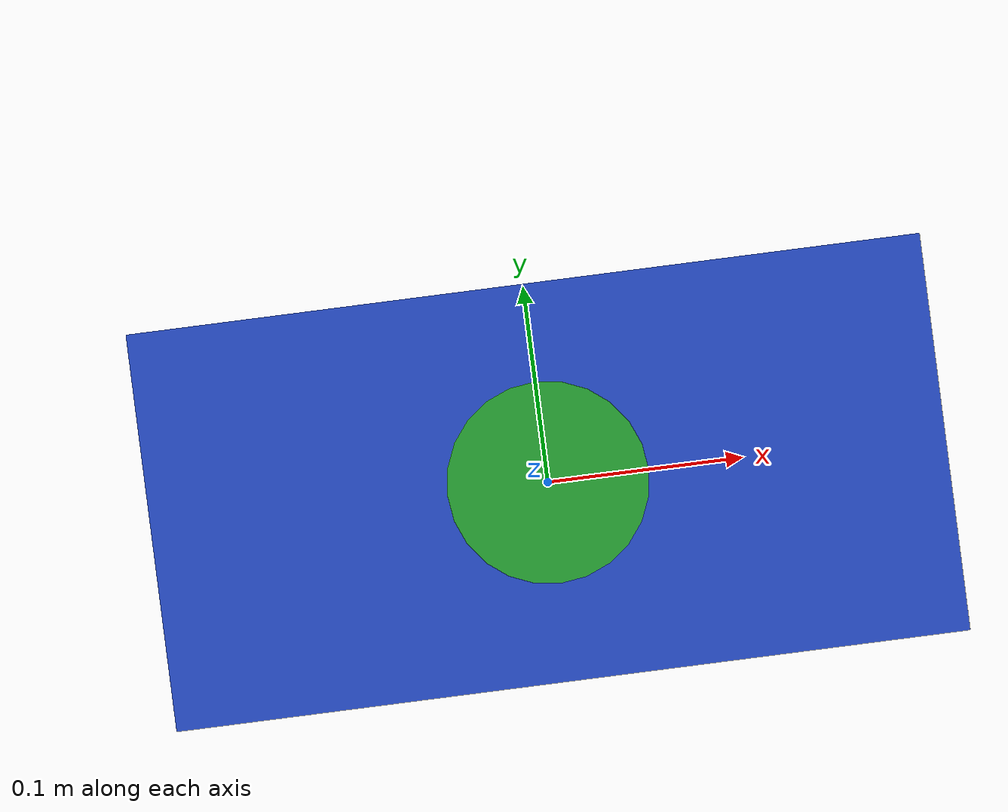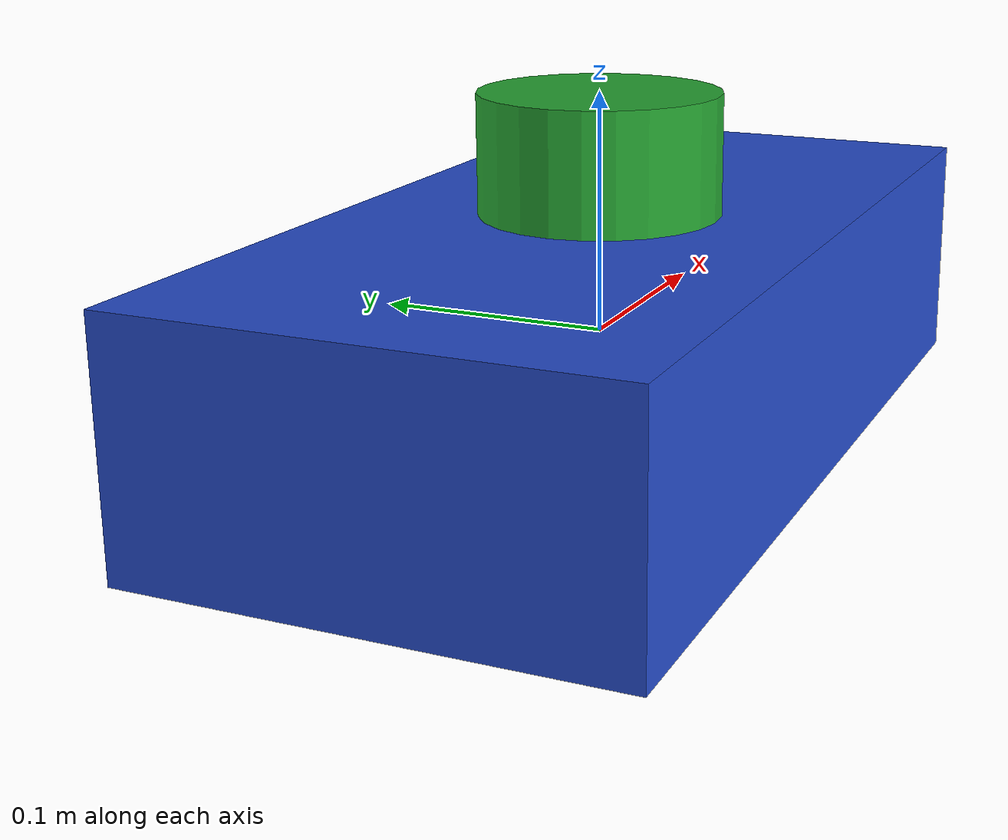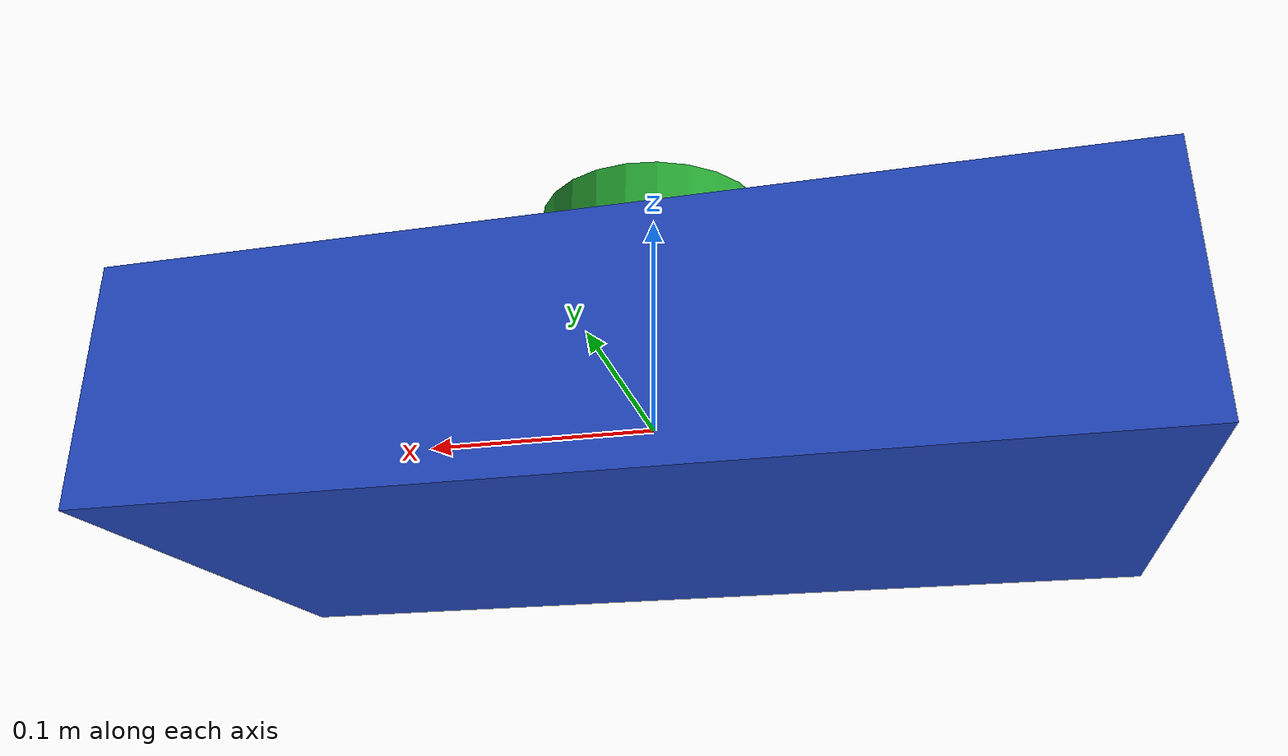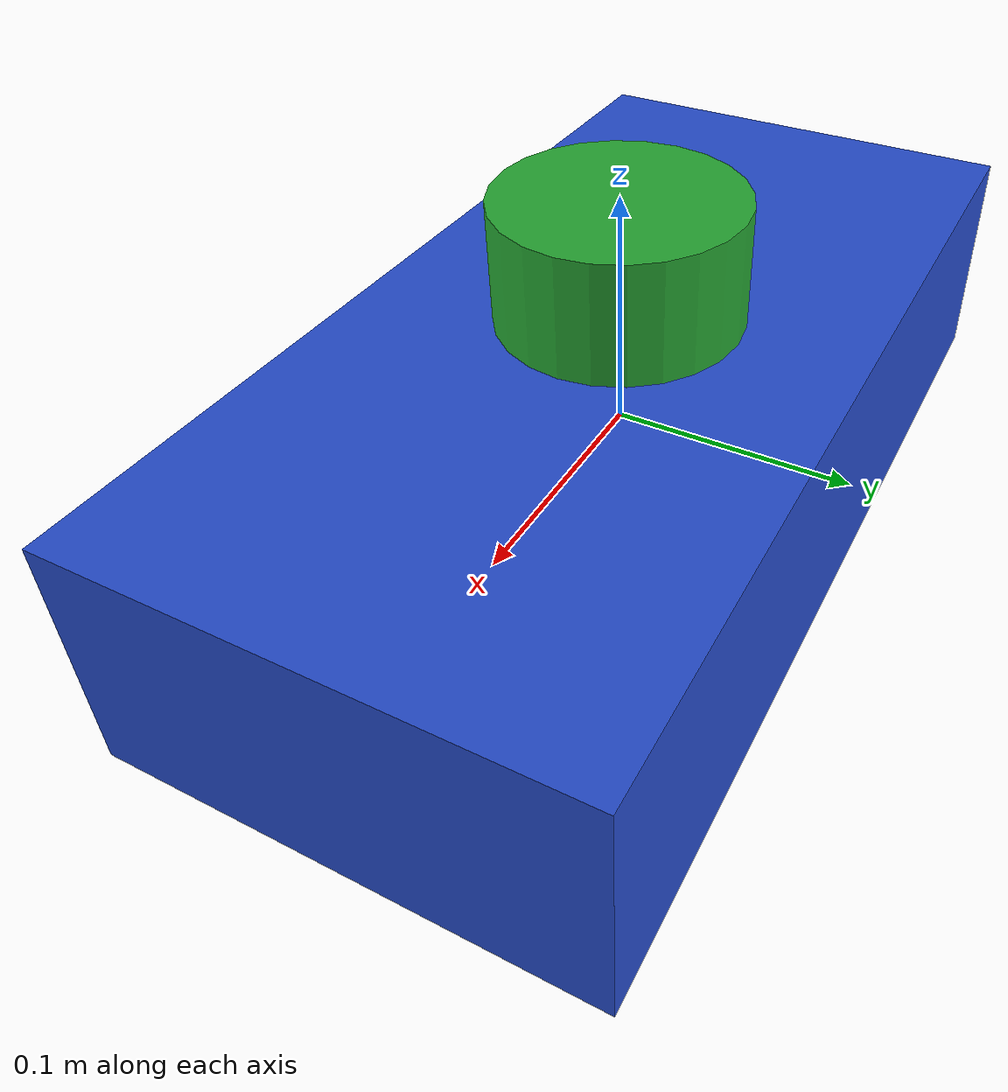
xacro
<?xml version="1.0"?>
<robot xmlns:xacro="http://www.ros.org/wiki/xacro" name="lidar">
  <!-- Base Link -->
  <link name="base_link">
    <visual>
      <geometry>
        <box size="0.4 0.2 0.1"/>
      </geometry>
      <material name="blue"/>
    </visual>
    <collision>
      <geometry>
        <box size="0.4 0.2 0.1"/>
      </geometry>
    </collision>
    <inertial>
      <mass value="1.0"/>
      <origin xyz="0 0 0" rpy="0 0 0"/>
      <inertia ixx="0.01" iyy="0.01" izz="0.01" ixy="0" ixz="0" iyz="0"/>
    </inertial>
  </link>

  <!-- LiDAR Sensor Link -->
  <link name="lidar_link">
    <visual>
      <geometry>
        <cylinder length="0.1" radius="0.05"/>
      </geometry>
      <material name="green"/>
    </visual>
  </link>

  <!-- LiDAR Joint -->
  <joint name="lidar_joint" type="fixed">
    <parent link="base_link"/>
    <child link="lidar_link"/>
    <origin xyz="0 0 0.05" rpy="0 0 0"/>
  </joint>

  <!-- LiDAR Sensor -->
  <gazebo>
    <sensor type="ray" name="lidar_sensor">
      <pose>0 0 0 0 0 0</pose>
      <update_rate>20</update_rate>
      <ray>
        <scan>
          <horizontal>
            <samples>720</samples>
            <resolution>1</resolution>
            <min_angle>-1.5708</min_angle>
            <max_angle>1.5708</max_angle>
          </horizontal>
          <range>
            <min>0.2</min>
            <max>10.0</max>
          </range>
        </scan>
      </ray>
      <plugin name="gazebo_ros_ray_sensor" filename="libgazebo_ros_range.so"/>

    </sensor>
  </gazebo>
</robot>
